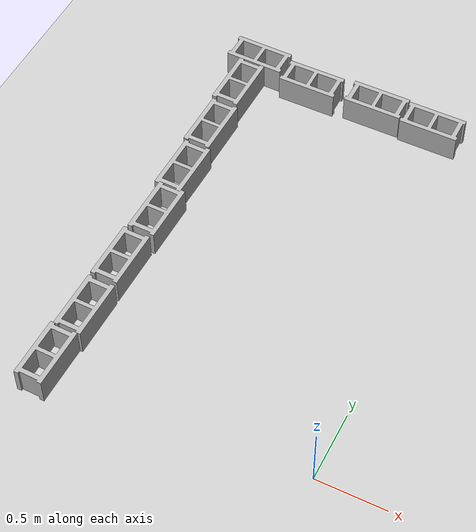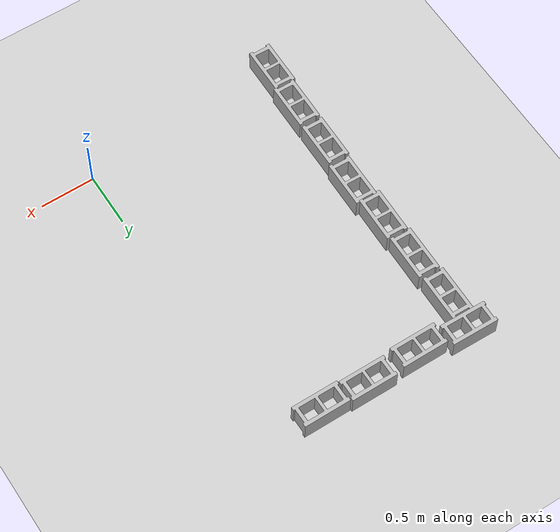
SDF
<sdf version="1.6">
 <world name="default">
  <model name="ground_plane">
   <static>1</static>
   <link name="link">
    <collision name="collision">
     <geometry><plane><normal>0 0 1</normal><size>100 100</size></plane></geometry>
     <surface>
      <contact><collide_bitmask>65535</collide_bitmask></contact>
      <friction><ode><mu>100</mu><mu2>50</mu2></ode></friction>
     </surface>
    </collision>
    <visual name="visual">
     <cast_shadows>0</cast_shadows>
     <geometry><plane><normal>0 0 1</normal><size>100 100</size></plane></geometry>
     <material>
      <script><uri>file://media/materials/scripts/gazebo.material</uri><name>Gazebo/Grey</name></script>
     </material>
    </visual>
   </link>
  </model>
  <model name="cinder_block_2_clone_clone_6_clone_5">
   <link name="link">
    <inertial>
     <pose>0 0 0.1016 0 -0 0</pose>
     <mass>5</mass>
     <inertia>
      <ixx>0.028705</ixx>
      <ixy>0</ixy>
      <iyy>0.073708</iyy>
      <ixz>0</ixz>
      <iyz>0</iyz>
      <izz>0.06908</izz>
     </inertia>
    </inertial>
    <visual name="visual">
     <geometry><mesh><uri>model://cinder_block/meshes/cinder_block.dae</uri></mesh></geometry>
    </visual>
    <collision name="left">
     <pose>0 -0.08465 0.1016 0 -0 0</pose>
     <geometry><box><size>0.43495 0.0339 0.2032</size></box></geometry>
     <surface>
      <contact><ode><max_vel>0.1</max_vel><min_depth>0.001</min_depth></ode></contact>
      <friction><ode><mu>1</mu><mu2>1</mu2></ode></friction>
     </surface>
    </collision>
    <collision name="right">
     <pose>0 0.08465 0.1016 0 -0 0</pose>
     <geometry><box><size>0.43495 0.0339 0.2032</size></box></geometry>
     <surface>
      <contact><ode><max_vel>0.1</max_vel><min_depth>0.001</min_depth></ode></contact>
      <friction><ode><mu>1</mu><mu2>1</mu2></ode></friction>
     </surface>
    </collision>
    <collision name="front">
     <pose>0.18625 0 0.1016 0 -0 0</pose>
     <geometry><box><size>0.0339 0.1354 0.203</size></box></geometry>
     <surface>
      <contact><ode><max_vel>0.1</max_vel><min_depth>0.001</min_depth></ode></contact>
      <friction><ode><mu>1</mu><mu2>1</mu2></ode></friction>
     </surface>
    </collision>
    <collision name="middle">
     <pose>0 0 0.1016 0 -0 0</pose>
     <geometry><box><size>0.0339 0.1354 0.203</size></box></geometry>
     <surface>
      <contact><ode><max_vel>0.1</max_vel><min_depth>0.001</min_depth></ode></contact>
      <friction><ode><mu>1</mu><mu2>1</mu2></ode></friction>
     </surface>
    </collision>
    <collision name="back">
     <pose>-0.18625 0 0.1016 0 -0 0</pose>
     <geometry><box><size>0.0339 0.1354 0.203</size></box></geometry>
     <surface>
      <contact><ode><max_vel>0.1</max_vel><min_depth>0.001</min_depth></ode></contact>
      <friction><ode><mu>1</mu><mu2>1</mu2></ode></friction>
     </surface>
    </collision>
   </link>
   <pose>-1.86666 -0.041538 -1.2e-05 3e-06 -0 -1.59159</pose>
  </model>
  <model name="cinder_block_2_clone_clone_6_clone_6">
   <link name="link">
    <inertial>
     <pose>0 0 0.1016 0 -0 0</pose>
     <mass>5</mass>
     <inertia>
      <ixx>0.028705</ixx>
      <ixy>0</ixy>
      <iyy>0.073708</iyy>
      <ixz>0</ixz>
      <iyz>0</iyz>
      <izz>0.06908</izz>
     </inertia>
    </inertial>
    <visual name="visual">
     <geometry><mesh><uri>model://cinder_block/meshes/cinder_block.dae</uri></mesh></geometry>
    </visual>
    <collision name="left">
     <pose>0 -0.08465 0.1016 0 -0 0</pose>
     <geometry><box><size>0.43495 0.0339 0.2032</size></box></geometry>
     <surface>
      <contact><ode><max_vel>0.1</max_vel><min_depth>0.001</min_depth></ode></contact>
      <friction><ode><mu>1</mu><mu2>1</mu2></ode></friction>
     </surface>
    </collision>
    <collision name="right">
     <pose>0 0.08465 0.1016 0 -0 0</pose>
     <geometry><box><size>0.43495 0.0339 0.2032</size></box></geometry>
     <surface>
      <contact><ode><max_vel>0.1</max_vel><min_depth>0.001</min_depth></ode></contact>
      <friction><ode><mu>1</mu><mu2>1</mu2></ode></friction>
     </surface>
    </collision>
    <collision name="front">
     <pose>0.18625 0 0.1016 0 -0 0</pose>
     <geometry><box><size>0.0339 0.1354 0.203</size></box></geometry>
     <surface>
      <contact><ode><max_vel>0.1</max_vel><min_depth>0.001</min_depth></ode></contact>
      <friction><ode><mu>1</mu><mu2>1</mu2></ode></friction>
     </surface>
    </collision>
    <collision name="middle">
     <pose>0 0 0.1016 0 -0 0</pose>
     <geometry><box><size>0.0339 0.1354 0.203</size></box></geometry>
     <surface>
      <contact><ode><max_vel>0.1</max_vel><min_depth>0.001</min_depth></ode></contact>
      <friction><ode><mu>1</mu><mu2>1</mu2></ode></friction>
     </surface>
    </collision>
    <collision name="back">
     <pose>-0.18625 0 0.1016 0 -0 0</pose>
     <geometry><box><size>0.0339 0.1354 0.203</size></box></geometry>
     <surface>
      <contact><ode><max_vel>0.1</max_vel><min_depth>0.001</min_depth></ode></contact>
      <friction><ode><mu>1</mu><mu2>1</mu2></ode></friction>
     </surface>
    </collision>
   </link>
   <pose>-1.83864 0.392129 -1.2e-05 3e-06 -0 -1.59159</pose>
  </model>
  <model name="cinder_block_2_clone_clone_6_clone_7">
   <link name="link">
    <inertial>
     <pose>0 0 0.1016 0 -0 0</pose>
     <mass>5</mass>
     <inertia>
      <ixx>0.028705</ixx>
      <ixy>0</ixy>
      <iyy>0.073708</iyy>
      <ixz>0</ixz>
      <iyz>0</iyz>
      <izz>0.06908</izz>
     </inertia>
    </inertial>
    <visual name="visual">
     <geometry><mesh><uri>model://cinder_block/meshes/cinder_block.dae</uri></mesh></geometry>
    </visual>
    <collision name="left">
     <pose>0 -0.08465 0.1016 0 -0 0</pose>
     <geometry><box><size>0.43495 0.0339 0.2032</size></box></geometry>
     <surface>
      <contact><ode><max_vel>0.1</max_vel><min_depth>0.001</min_depth></ode></contact>
      <friction><ode><mu>1</mu><mu2>1</mu2></ode></friction>
     </surface>
    </collision>
    <collision name="right">
     <pose>0 0.08465 0.1016 0 -0 0</pose>
     <geometry><box><size>0.43495 0.0339 0.2032</size></box></geometry>
     <surface>
      <contact><ode><max_vel>0.1</max_vel><min_depth>0.001</min_depth></ode></contact>
      <friction><ode><mu>1</mu><mu2>1</mu2></ode></friction>
     </surface>
    </collision>
    <collision name="front">
     <pose>0.18625 0 0.1016 0 -0 0</pose>
     <geometry><box><size>0.0339 0.1354 0.203</size></box></geometry>
     <surface>
      <contact><ode><max_vel>0.1</max_vel><min_depth>0.001</min_depth></ode></contact>
      <friction><ode><mu>1</mu><mu2>1</mu2></ode></friction>
     </surface>
    </collision>
    <collision name="middle">
     <pose>0 0 0.1016 0 -0 0</pose>
     <geometry><box><size>0.0339 0.1354 0.203</size></box></geometry>
     <surface>
      <contact><ode><max_vel>0.1</max_vel><min_depth>0.001</min_depth></ode></contact>
      <friction><ode><mu>1</mu><mu2>1</mu2></ode></friction>
     </surface>
    </collision>
    <collision name="back">
     <pose>-0.18625 0 0.1016 0 -0 0</pose>
     <geometry><box><size>0.0339 0.1354 0.203</size></box></geometry>
     <surface>
      <contact><ode><max_vel>0.1</max_vel><min_depth>0.001</min_depth></ode></contact>
      <friction><ode><mu>1</mu><mu2>1</mu2></ode></friction>
     </surface>
    </collision>
   </link>
   <pose>-1.83158 0.851485 -1.2e-05 4e-06 -0 -1.59062</pose>
  </model>
  <model name="cinder_block_2_clone_clone_6_clone_8">
   <link name="link">
    <inertial>
     <pose>0 0 0.1016 0 -0 0</pose>
     <mass>5</mass>
     <inertia>
      <ixx>0.028705</ixx>
      <ixy>0</ixy>
      <iyy>0.073708</iyy>
      <ixz>0</ixz>
      <iyz>0</iyz>
      <izz>0.06908</izz>
     </inertia>
    </inertial>
    <visual name="visual">
     <geometry><mesh><uri>model://cinder_block/meshes/cinder_block.dae</uri></mesh></geometry>
    </visual>
    <collision name="left">
     <pose>0 -0.08465 0.1016 0 -0 0</pose>
     <geometry><box><size>0.43495 0.0339 0.2032</size></box></geometry>
     <surface>
      <contact><ode><max_vel>0.1</max_vel><min_depth>0.001</min_depth></ode></contact>
      <friction><ode><mu>1</mu><mu2>1</mu2></ode></friction>
     </surface>
    </collision>
    <collision name="right">
     <pose>0 0.08465 0.1016 0 -0 0</pose>
     <geometry><box><size>0.43495 0.0339 0.2032</size></box></geometry>
     <surface>
      <contact><ode><max_vel>0.1</max_vel><min_depth>0.001</min_depth></ode></contact>
      <friction><ode><mu>1</mu><mu2>1</mu2></ode></friction>
     </surface>
    </collision>
    <collision name="front">
     <pose>0.18625 0 0.1016 0 -0 0</pose>
     <geometry><box><size>0.0339 0.1354 0.203</size></box></geometry>
     <surface>
      <contact><ode><max_vel>0.1</max_vel><min_depth>0.001</min_depth></ode></contact>
      <friction><ode><mu>1</mu><mu2>1</mu2></ode></friction>
     </surface>
    </collision>
    <collision name="middle">
     <pose>0 0 0.1016 0 -0 0</pose>
     <geometry><box><size>0.0339 0.1354 0.203</size></box></geometry>
     <surface>
      <contact><ode><max_vel>0.1</max_vel><min_depth>0.001</min_depth></ode></contact>
      <friction><ode><mu>1</mu><mu2>1</mu2></ode></friction>
     </surface>
    </collision>
    <collision name="back">
     <pose>-0.18625 0 0.1016 0 -0 0</pose>
     <geometry><box><size>0.0339 0.1354 0.203</size></box></geometry>
     <surface>
      <contact><ode><max_vel>0.1</max_vel><min_depth>0.001</min_depth></ode></contact>
      <friction><ode><mu>1</mu><mu2>1</mu2></ode></friction>
     </surface>
    </collision>
   </link>
   <pose>-1.80645 1.30752 -7e-06 8e-06 -1.3e-05 -1.59174</pose>
  </model>
  <model name="cinder_block_2_clone_clone_6_clone_9">
   <link name="link">
    <inertial>
     <pose>0 0 0.1016 0 -0 0</pose>
     <mass>5</mass>
     <inertia>
      <ixx>0.028705</ixx>
      <ixy>0</ixy>
      <iyy>0.073708</iyy>
      <ixz>0</ixz>
      <iyz>0</iyz>
      <izz>0.06908</izz>
     </inertia>
    </inertial>
    <visual name="visual">
     <geometry><mesh><uri>model://cinder_block/meshes/cinder_block.dae</uri></mesh></geometry>
    </visual>
    <collision name="left">
     <pose>0 -0.08465 0.1016 0 -0 0</pose>
     <geometry><box><size>0.43495 0.0339 0.2032</size></box></geometry>
     <surface>
      <contact><ode><max_vel>0.1</max_vel><min_depth>0.001</min_depth></ode></contact>
      <friction><ode><mu>1</mu><mu2>1</mu2></ode></friction>
     </surface>
    </collision>
    <collision name="right">
     <pose>0 0.08465 0.1016 0 -0 0</pose>
     <geometry><box><size>0.43495 0.0339 0.2032</size></box></geometry>
     <surface>
      <contact><ode><max_vel>0.1</max_vel><min_depth>0.001</min_depth></ode></contact>
      <friction><ode><mu>1</mu><mu2>1</mu2></ode></friction>
     </surface>
    </collision>
    <collision name="front">
     <pose>0.18625 0 0.1016 0 -0 0</pose>
     <geometry><box><size>0.0339 0.1354 0.203</size></box></geometry>
     <surface>
      <contact><ode><max_vel>0.1</max_vel><min_depth>0.001</min_depth></ode></contact>
      <friction><ode><mu>1</mu><mu2>1</mu2></ode></friction>
     </surface>
    </collision>
    <collision name="middle">
     <pose>0 0 0.1016 0 -0 0</pose>
     <geometry><box><size>0.0339 0.1354 0.203</size></box></geometry>
     <surface>
      <contact><ode><max_vel>0.1</max_vel><min_depth>0.001</min_depth></ode></contact>
      <friction><ode><mu>1</mu><mu2>1</mu2></ode></friction>
     </surface>
    </collision>
    <collision name="back">
     <pose>-0.18625 0 0.1016 0 -0 0</pose>
     <geometry><box><size>0.0339 0.1354 0.203</size></box></geometry>
     <surface>
      <contact><ode><max_vel>0.1</max_vel><min_depth>0.001</min_depth></ode></contact>
      <friction><ode><mu>1</mu><mu2>1</mu2></ode></friction>
     </surface>
    </collision>
   </link>
   <pose>-1.83038 1.729 -2.1e-05 8e-06 7.4e-05 -1.59621</pose>
  </model>
  <model name="cinder_block_2_clone_clone_6_clone_10">
   <link name="link">
    <inertial>
     <pose>0 0 0.1016 0 -0 0</pose>
     <mass>5</mass>
     <inertia>
      <ixx>0.028705</ixx>
      <ixy>0</ixy>
      <iyy>0.073708</iyy>
      <ixz>0</ixz>
      <iyz>0</iyz>
      <izz>0.06908</izz>
     </inertia>
    </inertial>
    <visual name="visual">
     <geometry><mesh><uri>model://cinder_block/meshes/cinder_block.dae</uri></mesh></geometry>
    </visual>
    <collision name="left">
     <pose>0 -0.08465 0.1016 0 -0 0</pose>
     <geometry><box><size>0.43495 0.0339 0.2032</size></box></geometry>
     <surface>
      <contact><ode><max_vel>0.1</max_vel><min_depth>0.001</min_depth></ode></contact>
      <friction><ode><mu>1</mu><mu2>1</mu2></ode></friction>
     </surface>
    </collision>
    <collision name="right">
     <pose>0 0.08465 0.1016 0 -0 0</pose>
     <geometry><box><size>0.43495 0.0339 0.2032</size></box></geometry>
     <surface>
      <contact><ode><max_vel>0.1</max_vel><min_depth>0.001</min_depth></ode></contact>
      <friction><ode><mu>1</mu><mu2>1</mu2></ode></friction>
     </surface>
    </collision>
    <collision name="front">
     <pose>0.18625 0 0.1016 0 -0 0</pose>
     <geometry><box><size>0.0339 0.1354 0.203</size></box></geometry>
     <surface>
      <contact><ode><max_vel>0.1</max_vel><min_depth>0.001</min_depth></ode></contact>
      <friction><ode><mu>1</mu><mu2>1</mu2></ode></friction>
     </surface>
    </collision>
    <collision name="middle">
     <pose>0 0 0.1016 0 -0 0</pose>
     <geometry><box><size>0.0339 0.1354 0.203</size></box></geometry>
     <surface>
      <contact><ode><max_vel>0.1</max_vel><min_depth>0.001</min_depth></ode></contact>
      <friction><ode><mu>1</mu><mu2>1</mu2></ode></friction>
     </surface>
    </collision>
    <collision name="back">
     <pose>-0.18625 0 0.1016 0 -0 0</pose>
     <geometry><box><size>0.0339 0.1354 0.203</size></box></geometry>
     <surface>
      <contact><ode><max_vel>0.1</max_vel><min_depth>0.001</min_depth></ode></contact>
      <friction><ode><mu>1</mu><mu2>1</mu2></ode></friction>
     </surface>
    </collision>
   </link>
   <pose>-1.84081 2.17345 -1.2e-05 4e-06 -0 -1.59062</pose>
  </model>
  <model name="cinder_block_2_clone_clone_6_clone_11">
   <link name="link">
    <inertial>
     <pose>0 0 0.1016 0 -0 0</pose>
     <mass>5</mass>
     <inertia>
      <ixx>0.028705</ixx>
      <ixy>0</ixy>
      <iyy>0.073708</iyy>
      <ixz>0</ixz>
      <iyz>0</iyz>
      <izz>0.06908</izz>
     </inertia>
    </inertial>
    <visual name="visual">
     <geometry><mesh><uri>model://cinder_block/meshes/cinder_block.dae</uri></mesh></geometry>
    </visual>
    <collision name="left">
     <pose>0 -0.08465 0.1016 0 -0 0</pose>
     <geometry><box><size>0.43495 0.0339 0.2032</size></box></geometry>
     <surface>
      <contact><ode><max_vel>0.1</max_vel><min_depth>0.001</min_depth></ode></contact>
      <friction><ode><mu>1</mu><mu2>1</mu2></ode></friction>
     </surface>
    </collision>
    <collision name="right">
     <pose>0 0.08465 0.1016 0 -0 0</pose>
     <geometry><box><size>0.43495 0.0339 0.2032</size></box></geometry>
     <surface>
      <contact><ode><max_vel>0.1</max_vel><min_depth>0.001</min_depth></ode></contact>
      <friction><ode><mu>1</mu><mu2>1</mu2></ode></friction>
     </surface>
    </collision>
    <collision name="front">
     <pose>0.18625 0 0.1016 0 -0 0</pose>
     <geometry><box><size>0.0339 0.1354 0.203</size></box></geometry>
     <surface>
      <contact><ode><max_vel>0.1</max_vel><min_depth>0.001</min_depth></ode></contact>
      <friction><ode><mu>1</mu><mu2>1</mu2></ode></friction>
     </surface>
    </collision>
    <collision name="middle">
     <pose>0 0 0.1016 0 -0 0</pose>
     <geometry><box><size>0.0339 0.1354 0.203</size></box></geometry>
     <surface>
      <contact><ode><max_vel>0.1</max_vel><min_depth>0.001</min_depth></ode></contact>
      <friction><ode><mu>1</mu><mu2>1</mu2></ode></friction>
     </surface>
    </collision>
    <collision name="back">
     <pose>-0.18625 0 0.1016 0 -0 0</pose>
     <geometry><box><size>0.0339 0.1354 0.203</size></box></geometry>
     <surface>
      <contact><ode><max_vel>0.1</max_vel><min_depth>0.001</min_depth></ode></contact>
      <friction><ode><mu>1</mu><mu2>1</mu2></ode></friction>
     </surface>
    </collision>
   </link>
   <pose>-1.85172 2.63067 -1.2e-05 6e-06 -0 -1.58792</pose>
  </model>
  <model name="cinder_block_clone">
   <link name="link">
    <inertial>
     <pose>0 0 0.1016 0 -0 0</pose>
     <mass>5</mass>
     <inertia>
      <ixx>0.028705</ixx>
      <ixy>0</ixy>
      <iyy>0.073708</iyy>
      <ixz>0</ixz>
      <iyz>0</iyz>
      <izz>0.06908</izz>
     </inertia>
    </inertial>
    <visual name="visual">
     <geometry><mesh><uri>model://cinder_block/meshes/cinder_block.dae</uri></mesh></geometry>
    </visual>
    <collision name="left">
     <pose>0 -0.08465 0.1016 0 -0 0</pose>
     <geometry><box><size>0.43495 0.0339 0.2032</size></box></geometry>
     <surface>
      <contact><ode><max_vel>0.1</max_vel><min_depth>0.001</min_depth></ode></contact>
      <friction><ode><mu>1</mu><mu2>1</mu2></ode></friction>
     </surface>
    </collision>
    <collision name="right">
     <pose>0 0.08465 0.1016 0 -0 0</pose>
     <geometry><box><size>0.43495 0.0339 0.2032</size></box></geometry>
     <surface>
      <contact><ode><max_vel>0.1</max_vel><min_depth>0.001</min_depth></ode></contact>
      <friction><ode><mu>1</mu><mu2>1</mu2></ode></friction>
     </surface>
    </collision>
    <collision name="front">
     <pose>0.18625 0 0.1016 0 -0 0</pose>
     <geometry><box><size>0.0339 0.1354 0.203</size></box></geometry>
     <surface>
      <contact><ode><max_vel>0.1</max_vel><min_depth>0.001</min_depth></ode></contact>
      <friction><ode><mu>1</mu><mu2>1</mu2></ode></friction>
     </surface>
    </collision>
    <collision name="middle">
     <pose>0 0 0.1016 0 -0 0</pose>
     <geometry><box><size>0.0339 0.1354 0.203</size></box></geometry>
     <surface>
      <contact><ode><max_vel>0.1</max_vel><min_depth>0.001</min_depth></ode></contact>
      <friction><ode><mu>1</mu><mu2>1</mu2></ode></friction>
     </surface>
    </collision>
    <collision name="back">
     <pose>-0.18625 0 0.1016 0 -0 0</pose>
     <geometry><box><size>0.0339 0.1354 0.203</size></box></geometry>
     <surface>
      <contact><ode><max_vel>0.1</max_vel><min_depth>0.001</min_depth></ode></contact>
      <friction><ode><mu>1</mu><mu2>1</mu2></ode></friction>
     </surface>
    </collision>
   </link>
   <pose>-0.423784 2.89787 -1.2e-05 -1e-06 -0 0</pose>
  </model>
  <model name="cinder_block_clone_0">
   <link name="link">
    <inertial>
     <pose>0 0 0.1016 0 -0 0</pose>
     <mass>5</mass>
     <inertia>
      <ixx>0.028705</ixx>
      <ixy>0</ixy>
      <iyy>0.073708</iyy>
      <ixz>0</ixz>
      <iyz>0</iyz>
      <izz>0.06908</izz>
     </inertia>
    </inertial>
    <visual name="visual">
     <geometry><mesh><uri>model://cinder_block/meshes/cinder_block.dae</uri></mesh></geometry>
    </visual>
    <collision name="left">
     <pose>0 -0.08465 0.1016 0 -0 0</pose>
     <geometry><box><size>0.43495 0.0339 0.2032</size></box></geometry>
     <surface>
      <contact><ode><max_vel>0.1</max_vel><min_depth>0.001</min_depth></ode></contact>
      <friction><ode><mu>1</mu><mu2>1</mu2></ode></friction>
     </surface>
    </collision>
    <collision name="right">
     <pose>0 0.08465 0.1016 0 -0 0</pose>
     <geometry><box><size>0.43495 0.0339 0.2032</size></box></geometry>
     <surface>
      <contact><ode><max_vel>0.1</max_vel><min_depth>0.001</min_depth></ode></contact>
      <friction><ode><mu>1</mu><mu2>1</mu2></ode></friction>
     </surface>
    </collision>
    <collision name="front">
     <pose>0.18625 0 0.1016 0 -0 0</pose>
     <geometry><box><size>0.0339 0.1354 0.203</size></box></geometry>
     <surface>
      <contact><ode><max_vel>0.1</max_vel><min_depth>0.001</min_depth></ode></contact>
      <friction><ode><mu>1</mu><mu2>1</mu2></ode></friction>
     </surface>
    </collision>
    <collision name="middle">
     <pose>0 0 0.1016 0 -0 0</pose>
     <geometry><box><size>0.0339 0.1354 0.203</size></box></geometry>
     <surface>
      <contact><ode><max_vel>0.1</max_vel><min_depth>0.001</min_depth></ode></contact>
      <friction><ode><mu>1</mu><mu2>1</mu2></ode></friction>
     </surface>
    </collision>
    <collision name="back">
     <pose>-0.18625 0 0.1016 0 -0 0</pose>
     <geometry><box><size>0.0339 0.1354 0.203</size></box></geometry>
     <surface>
      <contact><ode><max_vel>0.1</max_vel><min_depth>0.001</min_depth></ode></contact>
      <friction><ode><mu>1</mu><mu2>1</mu2></ode></friction>
     </surface>
    </collision>
   </link>
   <pose>-0.867639 2.91342 -1.2e-05 -1e-06 -0 0</pose>
  </model>
  <model name="cinder_block_clone_1">
   <link name="link">
    <inertial>
     <pose>0 0 0.1016 0 -0 0</pose>
     <mass>5</mass>
     <inertia>
      <ixx>0.028705</ixx>
      <ixy>0</ixy>
      <iyy>0.073708</iyy>
      <ixz>0</ixz>
      <iyz>0</iyz>
      <izz>0.06908</izz>
     </inertia>
    </inertial>
    <visual name="visual">
     <geometry><mesh><uri>model://cinder_block/meshes/cinder_block.dae</uri></mesh></geometry>
    </visual>
    <collision name="left">
     <pose>0 -0.08465 0.1016 0 -0 0</pose>
     <geometry><box><size>0.43495 0.0339 0.2032</size></box></geometry>
     <surface>
      <contact><ode><max_vel>0.1</max_vel><min_depth>0.001</min_depth></ode></contact>
      <friction><ode><mu>1</mu><mu2>1</mu2></ode></friction>
     </surface>
    </collision>
    <collision name="right">
     <pose>0 0.08465 0.1016 0 -0 0</pose>
     <geometry><box><size>0.43495 0.0339 0.2032</size></box></geometry>
     <surface>
      <contact><ode><max_vel>0.1</max_vel><min_depth>0.001</min_depth></ode></contact>
      <friction><ode><mu>1</mu><mu2>1</mu2></ode></friction>
     </surface>
    </collision>
    <collision name="front">
     <pose>0.18625 0 0.1016 0 -0 0</pose>
     <geometry><box><size>0.0339 0.1354 0.203</size></box></geometry>
     <surface>
      <contact><ode><max_vel>0.1</max_vel><min_depth>0.001</min_depth></ode></contact>
      <friction><ode><mu>1</mu><mu2>1</mu2></ode></friction>
     </surface>
    </collision>
    <collision name="middle">
     <pose>0 0 0.1016 0 -0 0</pose>
     <geometry><box><size>0.0339 0.1354 0.203</size></box></geometry>
     <surface>
      <contact><ode><max_vel>0.1</max_vel><min_depth>0.001</min_depth></ode></contact>
      <friction><ode><mu>1</mu><mu2>1</mu2></ode></friction>
     </surface>
    </collision>
    <collision name="back">
     <pose>-0.18625 0 0.1016 0 -0 0</pose>
     <geometry><box><size>0.0339 0.1354 0.203</size></box></geometry>
     <surface>
      <contact><ode><max_vel>0.1</max_vel><min_depth>0.001</min_depth></ode></contact>
      <friction><ode><mu>1</mu><mu2>1</mu2></ode></friction>
     </surface>
    </collision>
   </link>
   <pose>-1.37806 2.89121 -1.2e-05 -1e-06 -0 0</pose>
  </model>
  <model name="cinder_block_clone_2">
   <link name="link">
    <inertial>
     <pose>0 0 0.1016 0 -0 0</pose>
     <mass>5</mass>
     <inertia>
      <ixx>0.028705</ixx>
      <ixy>0</ixy>
      <iyy>0.073708</iyy>
      <ixz>0</ixz>
      <iyz>0</iyz>
      <izz>0.06908</izz>
     </inertia>
    </inertial>
    <visual name="visual">
     <geometry><mesh><uri>model://cinder_block/meshes/cinder_block.dae</uri></mesh></geometry>
    </visual>
    <collision name="left">
     <pose>0 -0.08465 0.1016 0 -0 0</pose>
     <geometry><box><size>0.43495 0.0339 0.2032</size></box></geometry>
     <surface>
      <contact><ode><max_vel>0.1</max_vel><min_depth>0.001</min_depth></ode></contact>
      <friction><ode><mu>1</mu><mu2>1</mu2></ode></friction>
     </surface>
    </collision>
    <collision name="right">
     <pose>0 0.08465 0.1016 0 -0 0</pose>
     <geometry><box><size>0.43495 0.0339 0.2032</size></box></geometry>
     <surface>
      <contact><ode><max_vel>0.1</max_vel><min_depth>0.001</min_depth></ode></contact>
      <friction><ode><mu>1</mu><mu2>1</mu2></ode></friction>
     </surface>
    </collision>
    <collision name="front">
     <pose>0.18625 0 0.1016 0 -0 0</pose>
     <geometry><box><size>0.0339 0.1354 0.203</size></box></geometry>
     <surface>
      <contact><ode><max_vel>0.1</max_vel><min_depth>0.001</min_depth></ode></contact>
      <friction><ode><mu>1</mu><mu2>1</mu2></ode></friction>
     </surface>
    </collision>
    <collision name="middle">
     <pose>0 0 0.1016 0 -0 0</pose>
     <geometry><box><size>0.0339 0.1354 0.203</size></box></geometry>
     <surface>
      <contact><ode><max_vel>0.1</max_vel><min_depth>0.001</min_depth></ode></contact>
      <friction><ode><mu>1</mu><mu2>1</mu2></ode></friction>
     </surface>
    </collision>
    <collision name="back">
     <pose>-0.18625 0 0.1016 0 -0 0</pose>
     <geometry><box><size>0.0339 0.1354 0.203</size></box></geometry>
     <surface>
      <contact><ode><max_vel>0.1</max_vel><min_depth>0.001</min_depth></ode></contact>
      <friction><ode><mu>1</mu><mu2>1</mu2></ode></friction>
     </surface>
    </collision>
   </link>
   <pose>-1.83541 2.94873 -1.2e-05 -3e-06 -0 -0.017152</pose>
  </model>
 </world>
</sdf>
